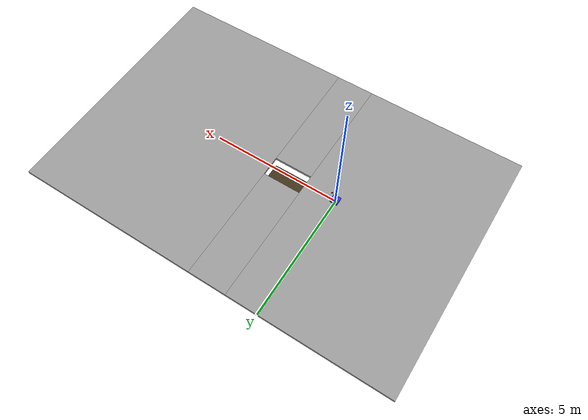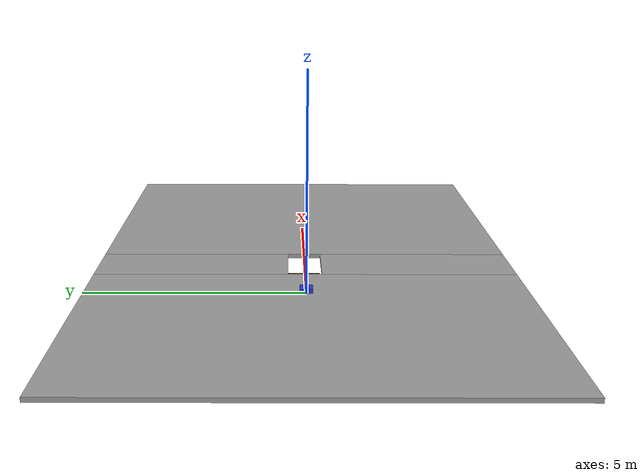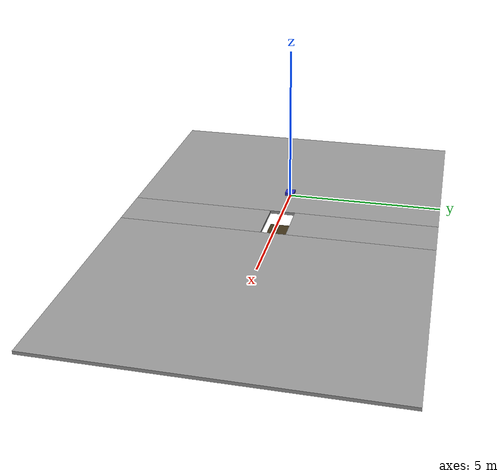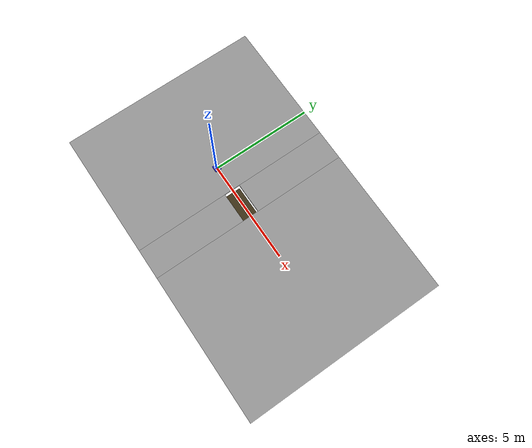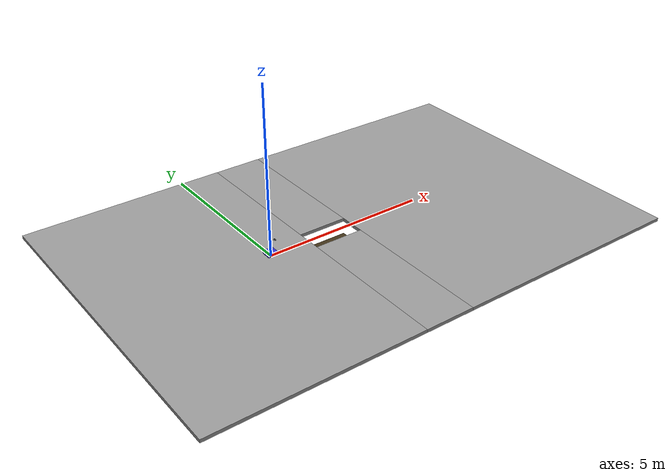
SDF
<?xml version="1.0" ?>
<sdf version="1.9">
  <world name="pit_scene">

    <physics name="default" type="ode">
      <max_step_size>0.001</max_step_size>
      <real_time_factor>1.0</real_time_factor>
    </physics>

    <!-- Zorunlu world-level pluginler (Gazebo Harmonic) -->
    <plugin filename="gz-sim-physics-system"
            name="gz::sim::systems::Physics"/>
    <plugin filename="gz-sim-sensors-system"
            name="gz::sim::systems::Sensors">
      <render_engine>ogre2</render_engine>
    </plugin>
    <plugin filename="gz-sim-scene-broadcaster-system"
            name="gz::sim::systems::SceneBroadcaster"/>

    <light name="sun" type="directional">
      <cast_shadows>true</cast_shadows>
      <pose>0 0 10 0 0 0</pose>
      <diffuse>0.8 0.8 0.8 1</diffuse>
      <specular>0.2 0.2 0.2 1</specular>
      <direction>-0.5 0.1 -0.9</direction>
    </light>

    <!--
      Zemin segmentleri: toplam 4 kutu, pit alanını çerçeveler.
      Her kutunun üst yüzeyi z=0'dır (slab merkezi z=-0.05, yükseklik 0.1).
    -->

    <!-- 1. Pit öncesi zemin: x=[-5, 1.25], y=[-5, 5] -->
    <model name="ground_before">
      <static>true</static>
      <pose>-1.875 0 -0.05 0 0 0</pose>
      <link name="link">
        <collision name="collision">
          <geometry><box><size>6.25 10.0 0.1</size></box></geometry>
        </collision>
        <visual name="visual">
          <geometry><box><size>6.25 10.0 0.1</size></box></geometry>
          <material>
            <ambient>0.60 0.60 0.60 1</ambient>
            <diffuse>0.60 0.60 0.60 1</diffuse>
          </material>
        </visual>
      </link>
    </model>

    <!-- 2. Pit sonrası zemin: x=[2.75, 10], y=[-5, 5] -->
    <model name="ground_after">
      <static>true</static>
      <pose>6.375 0 -0.05 0 0 0</pose>
      <link name="link">
        <collision name="collision">
          <geometry><box><size>7.25 10.0 0.1</size></box></geometry>
        </collision>
        <visual name="visual">
          <geometry><box><size>7.25 10.0 0.1</size></box></geometry>
          <material>
            <ambient>0.60 0.60 0.60 1</ambient>
            <diffuse>0.60 0.60 0.60 1</diffuse>
          </material>
        </visual>
      </link>
    </model>

    <!-- 3. Pit solundaki zemin: x=[1.25, 2.75], y=[0.4, 5] -->
    <model name="ground_left">
      <static>true</static>
      <pose>2.0 2.7 -0.05 0 0 0</pose>
      <link name="link">
        <collision name="collision">
          <geometry><box><size>1.5 4.6 0.1</size></box></geometry>
        </collision>
        <visual name="visual">
          <geometry><box><size>1.5 4.6 0.1</size></box></geometry>
          <material>
            <ambient>0.60 0.60 0.60 1</ambient>
            <diffuse>0.60 0.60 0.60 1</diffuse>
          </material>
        </visual>
      </link>
    </model>

    <!-- 4. Pit sağındaki zemin: x=[1.25, 2.75], y=[-5, -0.4] -->
    <model name="ground_right">
      <static>true</static>
      <pose>2.0 -2.7 -0.05 0 0 0</pose>
      <link name="link">
        <collision name="collision">
          <geometry><box><size>1.5 4.6 0.1</size></box></geometry>
        </collision>
        <visual name="visual">
          <geometry><box><size>1.5 4.6 0.1</size></box></geometry>
          <material>
            <ambient>0.60 0.60 0.60 1</ambient>
            <diffuse>0.60 0.60 0.60 1</diffuse>
          </material>
        </visual>
      </link>
    </model>

    <!-- 5. Pit tabanı: x=[1.25, 2.75], y=[-0.4, 0.4], z_top=-0.50 -->
    <model name="pit_floor">
      <static>true</static>
      <pose>2.0 0 -0.55 0 0 0</pose>
      <link name="link">
        <collision name="collision">
          <geometry><box><size>1.5 0.8 0.1</size></box></geometry>
        </collision>
        <visual name="visual">
          <geometry><box><size>1.5 0.8 0.1</size></box></geometry>
          <material>
            <ambient>0.20 0.15 0.10 1</ambient>
            <diffuse>0.25 0.20 0.10 1</diffuse>
          </material>
        </visual>
      </link>
    </model>

    <!--
      Kamera platformu
      camera_link pose: x=0.15, y=0, z=0.45, pitch=0.349 rad (~20°)
      Kamera optik ekseni: link +X yönünde = [cos20°, 0, -sin20°] = ileri+aşağı
    -->
    <model name="depth_camera_rig">
      <static>true</static>
      <pose>0 0 0 0 0 0</pose>

      <link name="base_link">
        <pose>0 0 0.1 0 0 0</pose>
        <inertial>
          <mass>1.0</mass>
          <inertia><ixx>0.1</ixx><iyy>0.1</iyy><izz>0.1</izz></inertia>
        </inertial>
        <visual name="base_visual">
          <geometry><box><size>0.3 0.3 0.1</size></box></geometry>
          <material><ambient>0.2 0.2 0.8 1</ambient></material>
        </visual>
      </link>

      <link name="camera_link">
        <pose>0.15 0 0.45 0 0.349 0</pose>
        <visual name="camera_visual">
          <geometry><box><size>0.05 0.05 0.03</size></box></geometry>
          <material><ambient>0.1 0.1 0.1 1</ambient></material>
        </visual>

        <sensor name="depth_camera" type="depth_camera">
          <update_rate>15</update_rate>
          <always_on>true</always_on>
          <visualize>false</visualize>
          <camera>
            <horizontal_fov>1.2217</horizontal_fov>
            <image>
              <width>320</width>
              <height>240</height>
              <format>R_FLOAT32</format>
            </image>
            <clip>
              <near>0.10</near>
              <far>10.0</far>
            </clip>
            <noise>
              <type>gaussian</type>
              <mean>0.0</mean>
              <stddev>0.01</stddev>
            </noise>
          </camera>
          <topic>camera/depth</topic>
        </sensor>
      </link>

      <joint name="camera_joint" type="fixed">
        <parent>base_link</parent>
        <child>camera_link</child>
      </joint>
    </model>

  </world>
</sdf>
